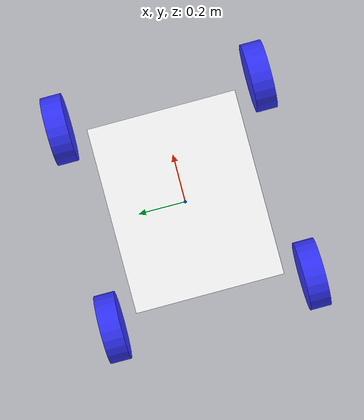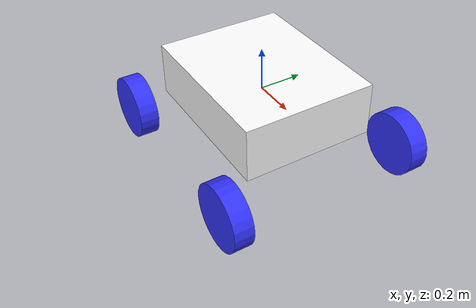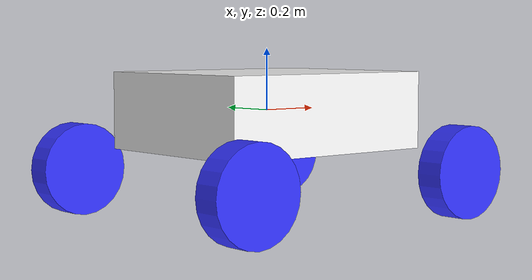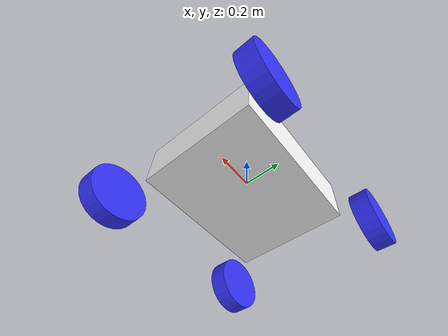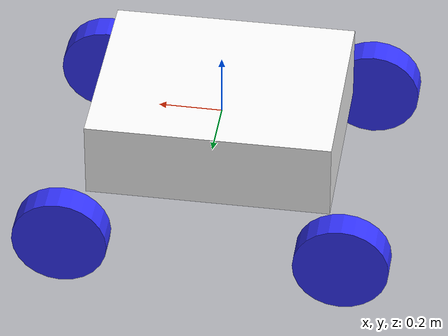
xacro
<?xml version="1.0"?>
<robot xmlns:xacro="http://www.ros.org/wiki/xacro" name="robot">

    <xacro:include filename="inertial_macros.xacro" />

    <material name="white">
        <color rgba="1 1 1 1" />
    </material>

    <material name="orange">
        <color rgba="1 0.3 0.1 1" />
    </material>

    <material name="blue">
        <color rgba="0.2 0.2 1 1" />
    </material>

    <material name="black">
        <color rgba="0 0 0 1" />
    </material>

    <!-- BASE Link -->
    <link name="base_link">

    </link>

    <!-- Chassis Link -->
    <joint name="chassis_joint" type="fixed">
        <parent link="base_link"/>
        <child link="chassis"/>
        <origin xyz="0 0 0"/>
    </joint>

    <link name="chassis">
        <visual>
            <origin xyz ="0 0 0"/>
            <geometry>
                <box size="0.77 0.62 0.25" />
            </geometry>
            <material name="white"/>
        </visual>
        <collision>
            <origin xyz ="0 0 0"/>
            <geometry>
                <box size="0.77 0.62 0.25" />
            </geometry>
        </collision>
        <xacro:inertial_box mass="20" x="0.77" y="0.62" z="0.25">
            <origin xyz="0 0 0" rpy="0 0 0"/>
        </xacro:inertial_box>
    </link>

    <gazebo reference="chassis">
        <material>Gazebo/White</material>
    </gazebo>

    <!-- Front Left Wheel Link -->
    <joint name="front_left_wheel_joint" type="continuous">
        <parent link="base_link" />
        <child link="front_left_wheel" />
        <origin xyz ="0.44071 -0.44259 -0.19571" rpy="-${pi/2} 0 0" />
        <axis xyz="0 0 1" />
    </joint>

    <link name="front_left_wheel">
        <visual>
            <geometry>
                <cylinder radius="0.15" length="0.09" />
            </geometry>
            <material name="blue"/>
        </visual>
        <collision>
            <geometry>
                <cylinder radius="0.15" length="0.09" />
            </geometry>
        </collision>
        <xacro:inertial_cylinder mass="1.2" length="0.09" radius="0.15">
            <origin xyz="0 0 0" rpy="0 0 0"/>
        </xacro:inertial_cylinder>
    </link>

    <gazebo reference="front_left_wheel">
        <material>Gazebo/Blue</material>
    </gazebo>

    <!-- Front Right Wheel Link -->
    <joint name="front_right_wheel_joint" type="continuous">
        <parent link="base_link" />
        <child link="front_right_wheel" />
        <origin xyz ="0.44071 0.44259 -0.19571" rpy="${pi/2} 0 0" />
        <axis xyz="0 0 -1" />
    </joint>

    <link name="front_right_wheel">
        <visual>

            <geometry>
                <cylinder radius="0.15" length="0.09" />
            </geometry>
            <material name="blue"/>
        </visual>
        <collision>
            <geometry>
                <cylinder radius="0.15" length="0.09" />
            </geometry>
        </collision>
        <xacro:inertial_cylinder mass="1.2" length="0.09" radius="0.15">
            <origin xyz="0 0 0" rpy="0 0 0"/>
        </xacro:inertial_cylinder>
    </link>

    <gazebo reference="front_right_wheel">
        <material>Gazebo/Blue</material>
    </gazebo>

    <!-- Back Left Wheel Link -->
    <joint name="back_left_wheel_joint" type="continuous">
        <parent link="base_link" />
        <child link="back_left_wheel" />
        <origin xyz ="-0.44071 -0.44259 -0.19571" rpy="-${pi/2} 0 0" />
        <axis xyz="0 0 1" />
    </joint>

    <link name="back_left_wheel">
        <visual>
            <geometry>
                <cylinder radius="0.15" length="0.09" />
            </geometry>
            <material name="blue"/>
        </visual>
        <collision>
            <geometry>
                <cylinder radius="0.15" length="0.09" />
            </geometry>
        </collision>
        <xacro:inertial_cylinder mass="1.2" length="0.09" radius="0.15">
            <origin xyz="0 0 0" rpy="0 0 0"/>
        </xacro:inertial_cylinder>
    </link>

    <gazebo reference="back_left_wheel">
        <material>Gazebo/Blue</material>
    </gazebo>

    <!-- Back Right Wheel Link -->
    <joint name="back_right_wheel_joint" type="continuous">
        <parent link="base_link" />
        <child link="back_right_wheel" />
        <origin xyz ="-0.44071 0.44259 -0.19571" rpy="${pi/2} 0 0" />
        <axis xyz="0 0 -1" />
    </joint>

    <link name="back_right_wheel">
        <visual>
            <geometry>
                <cylinder radius="0.15" length="0.09" />
            </geometry>
            <material name="blue"/>
        </visual>
        <collision>
            <geometry>
                <cylinder radius="0.15" length="0.09" />
            </geometry>
        </collision>
        <xacro:inertial_cylinder mass="1.2" length="0.09" radius="0.15">
            <origin xyz="0 0 0" rpy="0 0 0"/>
        </xacro:inertial_cylinder>
    </link>

    <gazebo reference="back_right_wheel">
        <material>Gazebo/Blue</material>
    </gazebo>

</robot>
